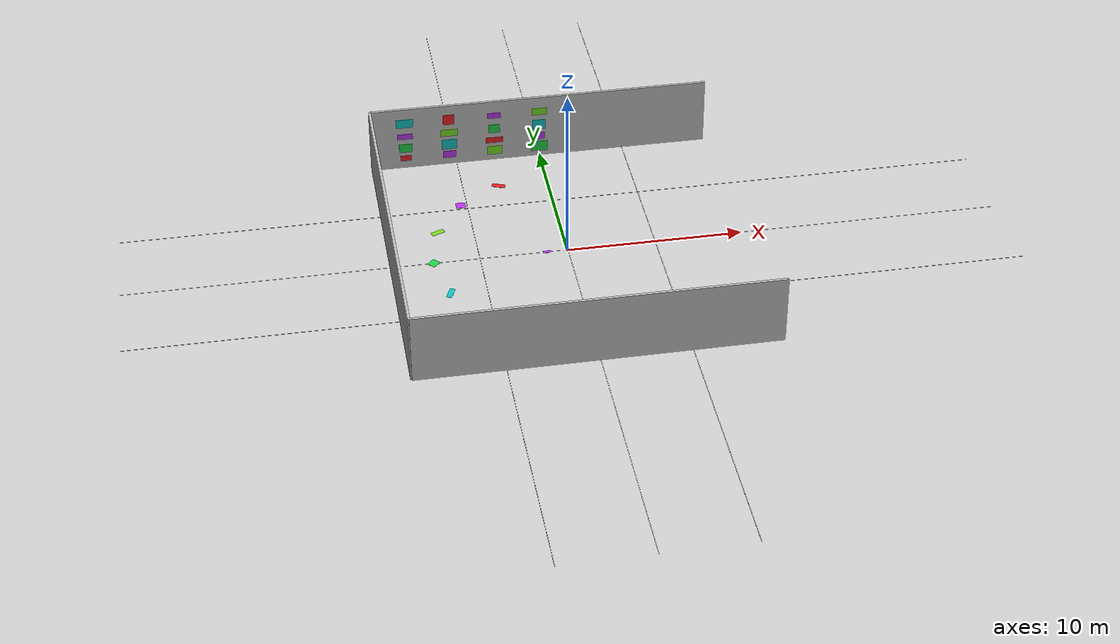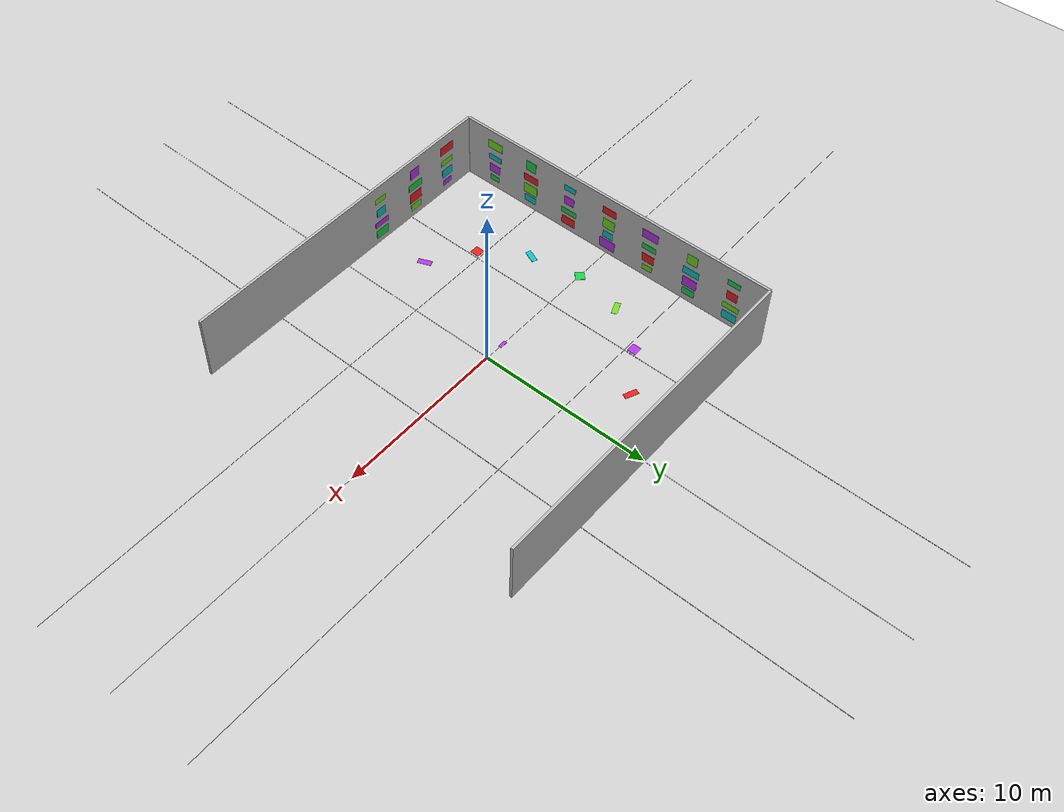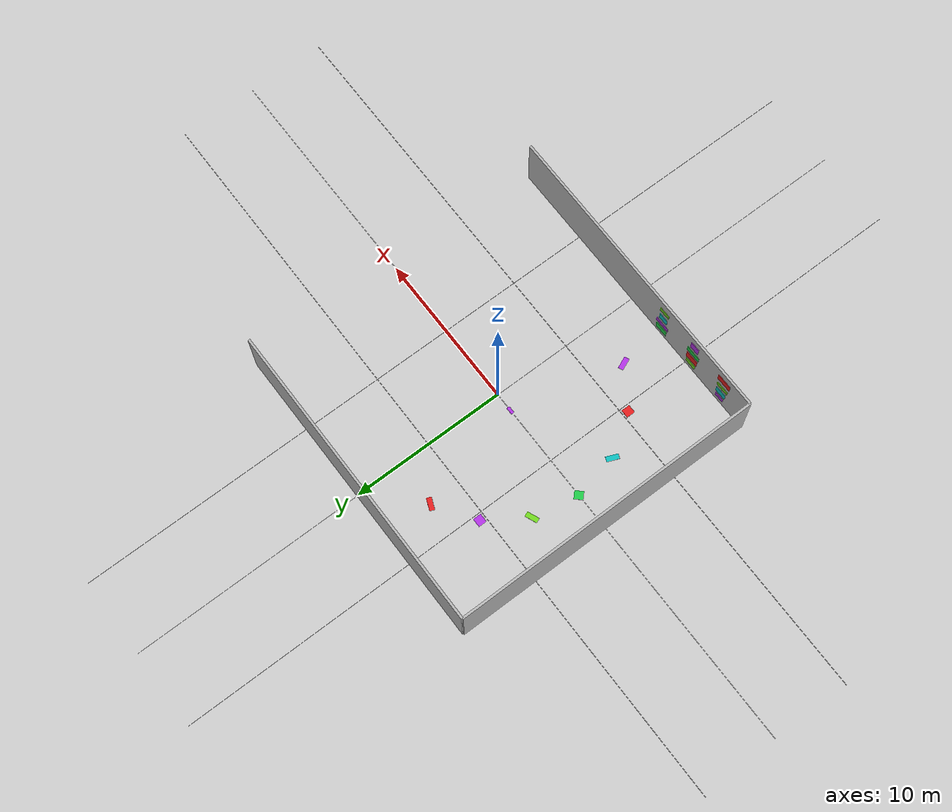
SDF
<sdf version="1.9">
 <world name="vio_marker_arena_half">
  <model name="ground_plane">
   <static>true</static>
   <link name="link">
    <collision name="collision">
     <geometry><plane><normal>0 0 1</normal><size>1 1</size></plane></geometry>
    </collision>
    <visual name="visual">
     <geometry><plane><normal>0 0 1</normal><size>500 500</size></plane></geometry>
     <material>
      <ambient>0.8 0.8 0.8 1</ambient>
      <diffuse>0.8 0.8 0.8 1</diffuse>
      <specular>0.8 0.8 0.8 1</specular>
     </material>
    </visual>
    <inertial>
     <mass>1</mass>
     <inertia><ixx>1</ixx><ixy>0</ixy><ixz>0</ixz><iyy>1</iyy><iyz>0</iyz><izz>1</izz></inertia>
    </inertial>
   </link>
  </model>
  <model name="visual_grid">
   <static>true</static>
   <pose>0 0 0.01 0 0 0</pose>
   <link name="grid_link">
    <visual name="x_line_1">
     <geometry><box><size>50 0.02 0.01</size></box></geometry>
     <material><ambient>0.7 0.7 0.7 1</ambient><diffuse>0.7 0.7 0.7 1</diffuse></material>
    </visual>
    <visual name="y_line_1">
     <pose>0 0 0 0 0 1.5708</pose>
     <geometry><box><size>50 0.02 0.01</size></box></geometry>
     <material><ambient>0.7 0.7 0.7 1</ambient><diffuse>0.7 0.7 0.7 1</diffuse></material>
    </visual>
    <visual name="x_line_5">
     <pose>0 5 0 0 0 0</pose>
     <geometry><box><size>50 0.02 0.01</size></box></geometry>
     <material><ambient>0.5 0.5 0.5 1</ambient><diffuse>0.5 0.5 0.5 1</diffuse></material>
    </visual>
    <visual name="x_line_minus5">
     <pose>0 -5 0 0 0 0</pose>
     <geometry><box><size>50 0.02 0.01</size></box></geometry>
     <material><ambient>0.5 0.5 0.5 1</ambient><diffuse>0.5 0.5 0.5 1</diffuse></material>
    </visual>
    <visual name="y_line_5">
     <pose>5 0 0 0 0 1.5708</pose>
     <geometry><box><size>50 0.02 0.01</size></box></geometry>
     <material><ambient>0.5 0.5 0.5 1</ambient><diffuse>0.5 0.5 0.5 1</diffuse></material>
    </visual>
    <visual name="y_line_minus5">
     <pose>-5 0 0 0 0 1.5708</pose>
     <geometry><box><size>50 0.02 0.01</size></box></geometry>
     <material><ambient>0.5 0.5 0.5 1</ambient><diffuse>0.5 0.5 0.5 1</diffuse></material>
    </visual>
   </link>
  </model>
  <model name="vio_wall_north">
   <static>true</static>
   <pose>0.0000 10.0000 2.0000 0.0000 0.0000 0.0000</pose>
   <link name="link">
    <collision name="collision"><geometry><box><size>20.0000 0.1500 4.0000</size></box></geometry></collision>
    <visual name="visual">
     <geometry><box><size>20.0000 0.1500 4.0000</size></box></geometry>
     <material>
      <ambient>0.720 0.720 0.720 1.000</ambient>
      <diffuse>0.720 0.720 0.720 1.000</diffuse>
      <specular>0.10 0.10 0.10 1</specular>
      <emissive>0 0 0 1</emissive>
     </material>
    </visual>
   </link>
  </model>
  <model name="vio_wall_south">
   <static>true</static>
   <pose>0.0000 -10.0000 2.0000 0.0000 0.0000 0.0000</pose>
   <link name="link">
    <collision name="collision"><geometry><box><size>20.0000 0.1500 4.0000</size></box></geometry></collision>
    <visual name="visual">
     <geometry><box><size>20.0000 0.1500 4.0000</size></box></geometry>
     <material>
      <ambient>0.720 0.720 0.720 1.000</ambient>
      <diffuse>0.720 0.720 0.720 1.000</diffuse>
      <specular>0.10 0.10 0.10 1</specular>
      <emissive>0 0 0 1</emissive>
     </material>
    </visual>
   </link>
  </model>
  <model name="vio_wall_west">
   <static>true</static>
   <pose>-10.0000 0.0000 2.0000 0.0000 0.0000 0.0000</pose>
   <link name="link">
    <collision name="collision"><geometry><box><size>0.1500 20.0000 4.0000</size></box></geometry></collision>
    <visual name="visual">
     <geometry><box><size>0.1500 20.0000 4.0000</size></box></geometry>
     <material>
      <ambient>0.720 0.720 0.720 1.000</ambient>
      <diffuse>0.720 0.720 0.720 1.000</diffuse>
      <specular>0.10 0.10 0.10 1</specular>
      <emissive>0 0 0 1</emissive>
     </material>
    </visual>
   </link>
  </model>
  <model name="vio_panel_north_0_0">
   <static>true</static>
   <pose>-8.0000 9.9190 0.6500 0.0000 0.0000 0.0000</pose>
   <link name="link">
    <visual name="visual">
     <geometry><box><size>0.6500 0.0350 0.3500</size></box></geometry>
     <material>
      <ambient>0.900 0.120 0.120 1.000</ambient>
      <diffuse>0.900 0.120 0.120 1.000</diffuse>
      <specular>0.10 0.10 0.10 1</specular>
      <emissive>0 0 0 1</emissive>
     </material>
    </visual>
   </link>
  </model>
  <model name="vio_panel_north_0_1">
   <static>true</static>
   <pose>-5.4000 9.9190 0.6500 0.0000 0.0000 0.0000</pose>
   <link name="link">
    <visual name="visual">
     <geometry><box><size>0.7700 0.0350 0.4500</size></box></geometry>
     <material>
      <ambient>0.700 0.200 0.900 1.000</ambient>
      <diffuse>0.700 0.200 0.900 1.000</diffuse>
      <specular>0.10 0.10 0.10 1</specular>
      <emissive>0 0 0 1</emissive>
     </material>
    </visual>
   </link>
  </model>
  <model name="vio_panel_north_0_2">
   <static>true</static>
   <pose>-2.7000 9.9190 0.6500 0.0000 0.0000 0.0000</pose>
   <link name="link">
    <visual name="visual">
     <geometry><box><size>0.8900 0.0350 0.5500</size></box></geometry>
     <material>
      <ambient>0.450 0.850 0.120 1.000</ambient>
      <diffuse>0.450 0.850 0.120 1.000</diffuse>
      <specular>0.10 0.10 0.10 1</specular>
      <emissive>0 0 0 1</emissive>
     </material>
    </visual>
   </link>
  </model>
  <model name="vio_panel_north_0_3">
   <static>true</static>
   <pose>0.0000 9.9190 0.6500 0.0000 0.0000 0.0000</pose>
   <link name="link">
    <visual name="visual">
     <geometry><box><size>1.0100 0.0350 0.6500</size></box></geometry>
     <material>
      <ambient>0.120 0.800 0.280 1.000</ambient>
      <diffuse>0.120 0.800 0.280 1.000</diffuse>
      <specular>0.10 0.10 0.10 1</specular>
      <emissive>0 0 0 1</emissive>
     </material>
    </visual>
   </link>
  </model>
  <model name="vio_panel_north_1_0">
   <static>true</static>
   <pose>-8.0000 9.9190 1.3500 0.0000 0.0000 0.0000</pose>
   <link name="link">
    <visual name="visual">
     <geometry><box><size>0.7700 0.0350 0.5500</size></box></geometry>
     <material>
      <ambient>0.120 0.800 0.280 1.000</ambient>
      <diffuse>0.120 0.800 0.280 1.000</diffuse>
      <specular>0.10 0.10 0.10 1</specular>
      <emissive>0 0 0 1</emissive>
     </material>
    </visual>
   </link>
  </model>
  <model name="vio_panel_north_1_1">
   <static>true</static>
   <pose>-5.4000 9.9190 1.3500 0.0000 0.0000 0.0000</pose>
   <link name="link">
    <visual name="visual">
     <geometry><box><size>0.8900 0.0350 0.6500</size></box></geometry>
     <material>
      <ambient>0.050 0.750 0.750 1.000</ambient>
      <diffuse>0.050 0.750 0.750 1.000</diffuse>
      <specular>0.10 0.10 0.10 1</specular>
      <emissive>0 0 0 1</emissive>
     </material>
    </visual>
   </link>
  </model>
  <model name="vio_panel_north_1_2">
   <static>true</static>
   <pose>-2.7000 9.9190 1.3500 0.0000 0.0000 0.0000</pose>
   <link name="link">
    <visual name="visual">
     <geometry><box><size>1.0100 0.0350 0.3500</size></box></geometry>
     <material>
      <ambient>0.900 0.120 0.120 1.000</ambient>
      <diffuse>0.900 0.120 0.120 1.000</diffuse>
      <specular>0.10 0.10 0.10 1</specular>
      <emissive>0 0 0 1</emissive>
     </material>
    </visual>
   </link>
  </model>
  <model name="vio_panel_north_1_3">
   <static>true</static>
   <pose>0.0000 9.9190 1.3500 0.0000 0.0000 0.0000</pose>
   <link name="link">
    <visual name="visual">
     <geometry><box><size>0.6500 0.0350 0.4500</size></box></geometry>
     <material>
      <ambient>0.700 0.200 0.900 1.000</ambient>
      <diffuse>0.700 0.200 0.900 1.000</diffuse>
      <specular>0.10 0.10 0.10 1</specular>
      <emissive>0 0 0 1</emissive>
     </material>
    </visual>
   </link>
  </model>
  <model name="vio_panel_north_2_0">
   <static>true</static>
   <pose>-8.0000 9.9190 2.1500 0.0000 0.0000 0.0000</pose>
   <link name="link">
    <visual name="visual">
     <geometry><box><size>0.8900 0.0350 0.3500</size></box></geometry>
     <material>
      <ambient>0.700 0.200 0.900 1.000</ambient>
      <diffuse>0.700 0.200 0.900 1.000</diffuse>
      <specular>0.10 0.10 0.10 1</specular>
      <emissive>0 0 0 1</emissive>
     </material>
    </visual>
   </link>
  </model>
  <model name="vio_panel_north_2_1">
   <static>true</static>
   <pose>-5.4000 9.9190 2.1500 0.0000 0.0000 0.0000</pose>
   <link name="link">
    <visual name="visual">
     <geometry><box><size>1.0100 0.0350 0.4500</size></box></geometry>
     <material>
      <ambient>0.450 0.850 0.120 1.000</ambient>
      <diffuse>0.450 0.850 0.120 1.000</diffuse>
      <specular>0.10 0.10 0.10 1</specular>
      <emissive>0 0 0 1</emissive>
     </material>
    </visual>
   </link>
  </model>
  <model name="vio_panel_north_2_2">
   <static>true</static>
   <pose>-2.7000 9.9190 2.1500 0.0000 0.0000 0.0000</pose>
   <link name="link">
    <visual name="visual">
     <geometry><box><size>0.6500 0.0350 0.5500</size></box></geometry>
     <material>
      <ambient>0.120 0.800 0.280 1.000</ambient>
      <diffuse>0.120 0.800 0.280 1.000</diffuse>
      <specular>0.10 0.10 0.10 1</specular>
      <emissive>0 0 0 1</emissive>
     </material>
    </visual>
   </link>
  </model>
  <model name="vio_panel_north_2_3">
   <static>true</static>
   <pose>0.0000 9.9190 2.1500 0.0000 0.0000 0.0000</pose>
   <link name="link">
    <visual name="visual">
     <geometry><box><size>0.7700 0.0350 0.6500</size></box></geometry>
     <material>
      <ambient>0.050 0.750 0.750 1.000</ambient>
      <diffuse>0.050 0.750 0.750 1.000</diffuse>
      <specular>0.10 0.10 0.10 1</specular>
      <emissive>0 0 0 1</emissive>
     </material>
    </visual>
   </link>
  </model>
  <model name="vio_panel_north_3_0">
   <static>true</static>
   <pose>-8.0000 9.9190 3.0500 0.0000 0.0000 0.0000</pose>
   <link name="link">
    <visual name="visual">
     <geometry><box><size>1.0100 0.0350 0.5500</size></box></geometry>
     <material>
      <ambient>0.050 0.750 0.750 1.000</ambient>
      <diffuse>0.050 0.750 0.750 1.000</diffuse>
      <specular>0.10 0.10 0.10 1</specular>
      <emissive>0 0 0 1</emissive>
     </material>
    </visual>
   </link>
  </model>
  <model name="vio_panel_north_3_1">
   <static>true</static>
   <pose>-5.4000 9.9190 3.0500 0.0000 0.0000 0.0000</pose>
   <link name="link">
    <visual name="visual">
     <geometry><box><size>0.6500 0.0350 0.6500</size></box></geometry>
     <material>
      <ambient>0.900 0.120 0.120 1.000</ambient>
      <diffuse>0.900 0.120 0.120 1.000</diffuse>
      <specular>0.10 0.10 0.10 1</specular>
      <emissive>0 0 0 1</emissive>
     </material>
    </visual>
   </link>
  </model>
  <model name="vio_panel_north_3_2">
   <static>true</static>
   <pose>-2.7000 9.9190 3.0500 0.0000 0.0000 0.0000</pose>
   <link name="link">
    <visual name="visual">
     <geometry><box><size>0.7700 0.0350 0.3500</size></box></geometry>
     <material>
      <ambient>0.700 0.200 0.900 1.000</ambient>
      <diffuse>0.700 0.200 0.900 1.000</diffuse>
      <specular>0.10 0.10 0.10 1</specular>
      <emissive>0 0 0 1</emissive>
     </material>
    </visual>
   </link>
  </model>
  <model name="vio_panel_north_3_3">
   <static>true</static>
   <pose>0.0000 9.9190 3.0500 0.0000 0.0000 0.0000</pose>
   <link name="link">
    <visual name="visual">
     <geometry><box><size>0.8900 0.0350 0.4500</size></box></geometry>
     <material>
      <ambient>0.450 0.850 0.120 1.000</ambient>
      <diffuse>0.450 0.850 0.120 1.000</diffuse>
      <specular>0.10 0.10 0.10 1</specular>
      <emissive>0 0 0 1</emissive>
     </material>
    </visual>
   </link>
  </model>
  <model name="vio_panel_south_0_0">
   <static>true</static>
   <pose>-8.0000 -9.9190 0.6500 0.0000 0.0000 0.0000</pose>
   <link name="link">
    <visual name="visual">
     <geometry><box><size>0.6500 0.0350 0.3500</size></box></geometry>
     <material>
      <ambient>0.700 0.200 0.900 1.000</ambient>
      <diffuse>0.700 0.200 0.900 1.000</diffuse>
      <specular>0.10 0.10 0.10 1</specular>
      <emissive>0 0 0 1</emissive>
     </material>
    </visual>
   </link>
  </model>
  <model name="vio_panel_south_0_1">
   <static>true</static>
   <pose>-5.4000 -9.9190 0.6500 0.0000 0.0000 0.0000</pose>
   <link name="link">
    <visual name="visual">
     <geometry><box><size>0.7700 0.0350 0.4500</size></box></geometry>
     <material>
      <ambient>0.450 0.850 0.120 1.000</ambient>
      <diffuse>0.450 0.850 0.120 1.000</diffuse>
      <specular>0.10 0.10 0.10 1</specular>
      <emissive>0 0 0 1</emissive>
     </material>
    </visual>
   </link>
  </model>
  <model name="vio_panel_south_0_2">
   <static>true</static>
   <pose>-2.7000 -9.9190 0.6500 0.0000 0.0000 0.0000</pose>
   <link name="link">
    <visual name="visual">
     <geometry><box><size>0.8900 0.0350 0.5500</size></box></geometry>
     <material>
      <ambient>0.120 0.800 0.280 1.000</ambient>
      <diffuse>0.120 0.800 0.280 1.000</diffuse>
      <specular>0.10 0.10 0.10 1</specular>
      <emissive>0 0 0 1</emissive>
     </material>
    </visual>
   </link>
  </model>
  <model name="vio_panel_south_1_0">
   <static>true</static>
   <pose>-8.0000 -9.9190 1.3500 0.0000 0.0000 0.0000</pose>
   <link name="link">
    <visual name="visual">
     <geometry><box><size>0.7700 0.0350 0.5500</size></box></geometry>
     <material>
      <ambient>0.050 0.750 0.750 1.000</ambient>
      <diffuse>0.050 0.750 0.750 1.000</diffuse>
      <specular>0.10 0.10 0.10 1</specular>
      <emissive>0 0 0 1</emissive>
     </material>
    </visual>
   </link>
  </model>
  <model name="vio_panel_south_1_1">
   <static>true</static>
   <pose>-5.4000 -9.9190 1.3500 0.0000 0.0000 0.0000</pose>
   <link name="link">
    <visual name="visual">
     <geometry><box><size>0.8900 0.0350 0.6500</size></box></geometry>
     <material>
      <ambient>0.900 0.120 0.120 1.000</ambient>
      <diffuse>0.900 0.120 0.120 1.000</diffuse>
      <specular>0.10 0.10 0.10 1</specular>
      <emissive>0 0 0 1</emissive>
     </material>
    </visual>
   </link>
  </model>
  <model name="vio_panel_south_1_2">
   <static>true</static>
   <pose>-2.7000 -9.9190 1.3500 0.0000 0.0000 0.0000</pose>
   <link name="link">
    <visual name="visual">
     <geometry><box><size>1.0100 0.0350 0.3500</size></box></geometry>
     <material>
      <ambient>0.700 0.200 0.900 1.000</ambient>
      <diffuse>0.700 0.200 0.900 1.000</diffuse>
      <specular>0.10 0.10 0.10 1</specular>
      <emissive>0 0 0 1</emissive>
     </material>
    </visual>
   </link>
  </model>
  <model name="vio_panel_south_2_0">
   <static>true</static>
   <pose>-8.0000 -9.9190 2.1500 0.0000 0.0000 0.0000</pose>
   <link name="link">
    <visual name="visual">
     <geometry><box><size>0.8900 0.0350 0.3500</size></box></geometry>
     <material>
      <ambient>0.450 0.850 0.120 1.000</ambient>
      <diffuse>0.450 0.850 0.120 1.000</diffuse>
      <specular>0.10 0.10 0.10 1</specular>
      <emissive>0 0 0 1</emissive>
     </material>
    </visual>
   </link>
  </model>
  <model name="vio_panel_south_2_1">
   <static>true</static>
   <pose>-5.4000 -9.9190 2.1500 0.0000 0.0000 0.0000</pose>
   <link name="link">
    <visual name="visual">
     <geometry><box><size>1.0100 0.0350 0.4500</size></box></geometry>
     <material>
      <ambient>0.120 0.800 0.280 1.000</ambient>
      <diffuse>0.120 0.800 0.280 1.000</diffuse>
      <specular>0.10 0.10 0.10 1</specular>
      <emissive>0 0 0 1</emissive>
     </material>
    </visual>
   </link>
  </model>
  <model name="vio_panel_south_2_2">
   <static>true</static>
   <pose>-2.7000 -9.9190 2.1500 0.0000 0.0000 0.0000</pose>
   <link name="link">
    <visual name="visual">
     <geometry><box><size>0.6500 0.0350 0.5500</size></box></geometry>
     <material>
      <ambient>0.050 0.750 0.750 1.000</ambient>
      <diffuse>0.050 0.750 0.750 1.000</diffuse>
      <specular>0.10 0.10 0.10 1</specular>
      <emissive>0 0 0 1</emissive>
     </material>
    </visual>
   </link>
  </model>
  <model name="vio_panel_south_3_0">
   <static>true</static>
   <pose>-8.0000 -9.9190 3.0500 0.0000 0.0000 0.0000</pose>
   <link name="link">
    <visual name="visual">
     <geometry><box><size>1.0100 0.0350 0.5500</size></box></geometry>
     <material>
      <ambient>0.900 0.120 0.120 1.000</ambient>
      <diffuse>0.900 0.120 0.120 1.000</diffuse>
      <specular>0.10 0.10 0.10 1</specular>
      <emissive>0 0 0 1</emissive>
     </material>
    </visual>
   </link>
  </model>
  <model name="vio_panel_south_3_1">
   <static>true</static>
   <pose>-5.4000 -9.9190 3.0500 0.0000 0.0000 0.0000</pose>
   <link name="link">
    <visual name="visual">
     <geometry><box><size>0.6500 0.0350 0.6500</size></box></geometry>
     <material>
      <ambient>0.700 0.200 0.900 1.000</ambient>
      <diffuse>0.700 0.200 0.900 1.000</diffuse>
      <specular>0.10 0.10 0.10 1</specular>
      <emissive>0 0 0 1</emissive>
     </material>
    </visual>
   </link>
  </model>
  <model name="vio_panel_south_3_2">
   <static>true</static>
   <pose>-2.7000 -9.9190 3.0500 0.0000 0.0000 0.0000</pose>
   <link name="link">
    <visual name="visual">
     <geometry><box><size>0.7700 0.0350 0.3500</size></box></geometry>
     <material>
      <ambient>0.450 0.850 0.120 1.000</ambient>
      <diffuse>0.450 0.850 0.120 1.000</diffuse>
      <specular>0.10 0.10 0.10 1</specular>
      <emissive>0 0 0 1</emissive>
     </material>
    </visual>
   </link>
  </model>
  <model name="vio_panel_west_0_0">
   <static>true</static>
   <pose>-9.9190 -8.0000 0.6500 0.0000 0.0000 0.0000</pose>
   <link name="link">
    <visual name="visual">
     <geometry><box><size>0.0350 0.6500 0.3500</size></box></geometry>
     <material>
      <ambient>0.120 0.800 0.280 1.000</ambient>
      <diffuse>0.120 0.800 0.280 1.000</diffuse>
      <specular>0.10 0.10 0.10 1</specular>
      <emissive>0 0 0 1</emissive>
     </material>
    </visual>
   </link>
  </model>
  <model name="vio_panel_west_0_1">
   <static>true</static>
   <pose>-9.9190 -5.4000 0.6500 0.0000 0.0000 0.0000</pose>
   <link name="link">
    <visual name="visual">
     <geometry><box><size>0.0350 0.7700 0.4500</size></box></geometry>
     <material>
      <ambient>0.050 0.750 0.750 1.000</ambient>
      <diffuse>0.050 0.750 0.750 1.000</diffuse>
      <specular>0.10 0.10 0.10 1</specular>
      <emissive>0 0 0 1</emissive>
     </material>
    </visual>
   </link>
  </model>
  <model name="vio_panel_west_0_2">
   <static>true</static>
   <pose>-9.9190 -2.7000 0.6500 0.0000 0.0000 0.0000</pose>
   <link name="link">
    <visual name="visual">
     <geometry><box><size>0.0350 0.8900 0.5500</size></box></geometry>
     <material>
      <ambient>0.900 0.120 0.120 1.000</ambient>
      <diffuse>0.900 0.120 0.120 1.000</diffuse>
      <specular>0.10 0.10 0.10 1</specular>
      <emissive>0 0 0 1</emissive>
     </material>
    </visual>
   </link>
  </model>
  <model name="vio_panel_west_0_3">
   <static>true</static>
   <pose>-9.9190 0.0000 0.6500 0.0000 0.0000 0.0000</pose>
   <link name="link">
    <visual name="visual">
     <geometry><box><size>0.0350 1.0100 0.6500</size></box></geometry>
     <material>
      <ambient>0.700 0.200 0.900 1.000</ambient>
      <diffuse>0.700 0.200 0.900 1.000</diffuse>
      <specular>0.10 0.10 0.10 1</specular>
      <emissive>0 0 0 1</emissive>
     </material>
    </visual>
   </link>
  </model>
  <model name="vio_panel_west_0_4">
   <static>true</static>
   <pose>-9.9190 2.7000 0.6500 0.0000 0.0000 0.0000</pose>
   <link name="link">
    <visual name="visual">
     <geometry><box><size>0.0350 0.6500 0.3500</size></box></geometry>
     <material>
      <ambient>0.450 0.850 0.120 1.000</ambient>
      <diffuse>0.450 0.850 0.120 1.000</diffuse>
      <specular>0.10 0.10 0.10 1</specular>
      <emissive>0 0 0 1</emissive>
     </material>
    </visual>
   </link>
  </model>
  <model name="vio_panel_west_0_5">
   <static>true</static>
   <pose>-9.9190 5.4000 0.6500 0.0000 0.0000 0.0000</pose>
   <link name="link">
    <visual name="visual">
     <geometry><box><size>0.0350 0.7700 0.4500</size></box></geometry>
     <material>
      <ambient>0.120 0.800 0.280 1.000</ambient>
      <diffuse>0.120 0.800 0.280 1.000</diffuse>
      <specular>0.10 0.10 0.10 1</specular>
      <emissive>0 0 0 1</emissive>
     </material>
    </visual>
   </link>
  </model>
  <model name="vio_panel_west_0_6">
   <static>true</static>
   <pose>-9.9190 8.0000 0.6500 0.0000 0.0000 0.0000</pose>
   <link name="link">
    <visual name="visual">
     <geometry><box><size>0.0350 0.8900 0.5500</size></box></geometry>
     <material>
      <ambient>0.050 0.750 0.750 1.000</ambient>
      <diffuse>0.050 0.750 0.750 1.000</diffuse>
      <specular>0.10 0.10 0.10 1</specular>
      <emissive>0 0 0 1</emissive>
     </material>
    </visual>
   </link>
  </model>
  <model name="vio_panel_west_1_0">
   <static>true</static>
   <pose>-9.9190 -8.0000 1.3500 0.0000 0.0000 0.0000</pose>
   <link name="link">
    <visual name="visual">
     <geometry><box><size>0.0350 0.7700 0.5500</size></box></geometry>
     <material>
      <ambient>0.700 0.200 0.900 1.000</ambient>
      <diffuse>0.700 0.200 0.900 1.000</diffuse>
      <specular>0.10 0.10 0.10 1</specular>
      <emissive>0 0 0 1</emissive>
     </material>
    </visual>
   </link>
  </model>
  <model name="vio_panel_west_1_1">
   <static>true</static>
   <pose>-9.9190 -5.4000 1.3500 0.0000 0.0000 0.0000</pose>
   <link name="link">
    <visual name="visual">
     <geometry><box><size>0.0350 0.8900 0.6500</size></box></geometry>
     <material>
      <ambient>0.450 0.850 0.120 1.000</ambient>
      <diffuse>0.450 0.850 0.120 1.000</diffuse>
      <specular>0.10 0.10 0.10 1</specular>
      <emissive>0 0 0 1</emissive>
     </material>
    </visual>
   </link>
  </model>
  <model name="vio_panel_west_1_2">
   <static>true</static>
   <pose>-9.9190 -2.7000 1.3500 0.0000 0.0000 0.0000</pose>
   <link name="link">
    <visual name="visual">
     <geometry><box><size>0.0350 1.0100 0.3500</size></box></geometry>
     <material>
      <ambient>0.120 0.800 0.280 1.000</ambient>
      <diffuse>0.120 0.800 0.280 1.000</diffuse>
      <specular>0.10 0.10 0.10 1</specular>
      <emissive>0 0 0 1</emissive>
     </material>
    </visual>
   </link>
  </model>
  <model name="vio_panel_west_1_3">
   <static>true</static>
   <pose>-9.9190 0.0000 1.3500 0.0000 0.0000 0.0000</pose>
   <link name="link">
    <visual name="visual">
     <geometry><box><size>0.0350 0.6500 0.4500</size></box></geometry>
     <material>
      <ambient>0.050 0.750 0.750 1.000</ambient>
      <diffuse>0.050 0.750 0.750 1.000</diffuse>
      <specular>0.10 0.10 0.10 1</specular>
      <emissive>0 0 0 1</emissive>
     </material>
    </visual>
   </link>
  </model>
  <model name="vio_panel_west_1_4">
   <static>true</static>
   <pose>-9.9190 2.7000 1.3500 0.0000 0.0000 0.0000</pose>
   <link name="link">
    <visual name="visual">
     <geometry><box><size>0.0350 0.7700 0.5500</size></box></geometry>
     <material>
      <ambient>0.900 0.120 0.120 1.000</ambient>
      <diffuse>0.900 0.120 0.120 1.000</diffuse>
      <specular>0.10 0.10 0.10 1</specular>
      <emissive>0 0 0 1</emissive>
     </material>
    </visual>
   </link>
  </model>
  <model name="vio_panel_west_1_5">
   <static>true</static>
   <pose>-9.9190 5.4000 1.3500 0.0000 0.0000 0.0000</pose>
   <link name="link">
    <visual name="visual">
     <geometry><box><size>0.0350 0.8900 0.6500</size></box></geometry>
     <material>
      <ambient>0.700 0.200 0.900 1.000</ambient>
      <diffuse>0.700 0.200 0.900 1.000</diffuse>
      <specular>0.10 0.10 0.10 1</specular>
      <emissive>0 0 0 1</emissive>
     </material>
    </visual>
   </link>
  </model>
  <model name="vio_panel_west_1_6">
   <static>true</static>
   <pose>-9.9190 8.0000 1.3500 0.0000 0.0000 0.0000</pose>
   <link name="link">
    <visual name="visual">
     <geometry><box><size>0.0350 1.0100 0.3500</size></box></geometry>
     <material>
      <ambient>0.450 0.850 0.120 1.000</ambient>
      <diffuse>0.450 0.850 0.120 1.000</diffuse>
      <specular>0.10 0.10 0.10 1</specular>
      <emissive>0 0 0 1</emissive>
     </material>
    </visual>
   </link>
  </model>
  <model name="vio_panel_west_2_0">
   <static>true</static>
   <pose>-9.9190 -8.0000 2.1500 0.0000 0.0000 0.0000</pose>
   <link name="link">
    <visual name="visual">
     <geometry><box><size>0.0350 0.8900 0.3500</size></box></geometry>
     <material>
      <ambient>0.050 0.750 0.750 1.000</ambient>
      <diffuse>0.050 0.750 0.750 1.000</diffuse>
      <specular>0.10 0.10 0.10 1</specular>
      <emissive>0 0 0 1</emissive>
     </material>
    </visual>
   </link>
  </model>
  <model name="vio_panel_west_2_1">
   <static>true</static>
   <pose>-9.9190 -5.4000 2.1500 0.0000 0.0000 0.0000</pose>
   <link name="link">
    <visual name="visual">
     <geometry><box><size>0.0350 1.0100 0.4500</size></box></geometry>
     <material>
      <ambient>0.900 0.120 0.120 1.000</ambient>
      <diffuse>0.900 0.120 0.120 1.000</diffuse>
      <specular>0.10 0.10 0.10 1</specular>
      <emissive>0 0 0 1</emissive>
     </material>
    </visual>
   </link>
  </model>
  <model name="vio_panel_west_2_2">
   <static>true</static>
   <pose>-9.9190 -2.7000 2.1500 0.0000 0.0000 0.0000</pose>
   <link name="link">
    <visual name="visual">
     <geometry><box><size>0.0350 0.6500 0.5500</size></box></geometry>
     <material>
      <ambient>0.700 0.200 0.900 1.000</ambient>
      <diffuse>0.700 0.200 0.900 1.000</diffuse>
      <specular>0.10 0.10 0.10 1</specular>
      <emissive>0 0 0 1</emissive>
     </material>
    </visual>
   </link>
  </model>
  <model name="vio_panel_west_2_3">
   <static>true</static>
   <pose>-9.9190 0.0000 2.1500 0.0000 0.0000 0.0000</pose>
   <link name="link">
    <visual name="visual">
     <geometry><box><size>0.0350 0.7700 0.6500</size></box></geometry>
     <material>
      <ambient>0.450 0.850 0.120 1.000</ambient>
      <diffuse>0.450 0.850 0.120 1.000</diffuse>
      <specular>0.10 0.10 0.10 1</specular>
      <emissive>0 0 0 1</emissive>
     </material>
    </visual>
   </link>
  </model>
  <model name="vio_panel_west_2_4">
   <static>true</static>
   <pose>-9.9190 2.7000 2.1500 0.0000 0.0000 0.0000</pose>
   <link name="link">
    <visual name="visual">
     <geometry><box><size>0.0350 0.8900 0.3500</size></box></geometry>
     <material>
      <ambient>0.120 0.800 0.280 1.000</ambient>
      <diffuse>0.120 0.800 0.280 1.000</diffuse>
      <specular>0.10 0.10 0.10 1</specular>
      <emissive>0 0 0 1</emissive>
     </material>
    </visual>
   </link>
  </model>
  <model name="vio_panel_west_2_5">
   <static>true</static>
   <pose>-9.9190 5.4000 2.1500 0.0000 0.0000 0.0000</pose>
   <link name="link">
    <visual name="visual">
     <geometry><box><size>0.0350 1.0100 0.4500</size></box></geometry>
     <material>
      <ambient>0.050 0.750 0.750 1.000</ambient>
      <diffuse>0.050 0.750 0.750 1.000</diffuse>
      <specular>0.10 0.10 0.10 1</specular>
      <emissive>0 0 0 1</emissive>
     </material>
    </visual>
   </link>
  </model>
  <model name="vio_panel_west_2_6">
   <static>true</static>
   <pose>-9.9190 8.0000 2.1500 0.0000 0.0000 0.0000</pose>
   <link name="link">
    <visual name="visual">
     <geometry><box><size>0.0350 0.6500 0.5500</size></box></geometry>
     <material>
      <ambient>0.900 0.120 0.120 1.000</ambient>
      <diffuse>0.900 0.120 0.120 1.000</diffuse>
      <specular>0.10 0.10 0.10 1</specular>
      <emissive>0 0 0 1</emissive>
     </material>
    </visual>
   </link>
  </model>
  <model name="vio_panel_west_3_0">
   <static>true</static>
   <pose>-9.9190 -8.0000 3.0500 0.0000 0.0000 0.0000</pose>
   <link name="link">
    <visual name="visual">
     <geometry><box><size>0.0350 1.0100 0.5500</size></box></geometry>
     <material>
      <ambient>0.450 0.850 0.120 1.000</ambient>
      <diffuse>0.450 0.850 0.120 1.000</diffuse>
      <specular>0.10 0.10 0.10 1</specular>
      <emissive>0 0 0 1</emissive>
     </material>
    </visual>
   </link>
  </model>
  <model name="vio_panel_west_3_1">
   <static>true</static>
   <pose>-9.9190 -5.4000 3.0500 0.0000 0.0000 0.0000</pose>
   <link name="link">
    <visual name="visual">
     <geometry><box><size>0.0350 0.6500 0.6500</size></box></geometry>
     <material>
      <ambient>0.120 0.800 0.280 1.000</ambient>
      <diffuse>0.120 0.800 0.280 1.000</diffuse>
      <specular>0.10 0.10 0.10 1</specular>
      <emissive>0 0 0 1</emissive>
     </material>
    </visual>
   </link>
  </model>
  <model name="vio_panel_west_3_2">
   <static>true</static>
   <pose>-9.9190 -2.7000 3.0500 0.0000 0.0000 0.0000</pose>
   <link name="link">
    <visual name="visual">
     <geometry><box><size>0.0350 0.7700 0.3500</size></box></geometry>
     <material>
      <ambient>0.050 0.750 0.750 1.000</ambient>
      <diffuse>0.050 0.750 0.750 1.000</diffuse>
      <specular>0.10 0.10 0.10 1</specular>
      <emissive>0 0 0 1</emissive>
     </material>
    </visual>
   </link>
  </model>
  <model name="vio_panel_west_3_3">
   <static>true</static>
   <pose>-9.9190 0.0000 3.0500 0.0000 0.0000 0.0000</pose>
   <link name="link">
    <visual name="visual">
     <geometry><box><size>0.0350 0.8900 0.4500</size></box></geometry>
     <material>
      <ambient>0.900 0.120 0.120 1.000</ambient>
      <diffuse>0.900 0.120 0.120 1.000</diffuse>
      <specular>0.10 0.10 0.10 1</specular>
      <emissive>0 0 0 1</emissive>
     </material>
    </visual>
   </link>
  </model>
  <model name="vio_panel_west_3_4">
   <static>true</static>
   <pose>-9.9190 2.7000 3.0500 0.0000 0.0000 0.0000</pose>
   <link name="link">
    <visual name="visual">
     <geometry><box><size>0.0350 1.0100 0.5500</size></box></geometry>
     <material>
      <ambient>0.700 0.200 0.900 1.000</ambient>
      <diffuse>0.700 0.200 0.900 1.000</diffuse>
      <specular>0.10 0.10 0.10 1</specular>
      <emissive>0 0 0 1</emissive>
     </material>
    </visual>
   </link>
  </model>
  <model name="vio_panel_west_3_5">
   <static>true</static>
   <pose>-9.9190 5.4000 3.0500 0.0000 0.0000 0.0000</pose>
   <link name="link">
    <visual name="visual">
     <geometry><box><size>0.0350 0.6500 0.6500</size></box></geometry>
     <material>
      <ambient>0.450 0.850 0.120 1.000</ambient>
      <diffuse>0.450 0.850 0.120 1.000</diffuse>
      <specular>0.10 0.10 0.10 1</specular>
      <emissive>0 0 0 1</emissive>
     </material>
    </visual>
   </link>
  </model>
  <model name="vio_panel_west_3_6">
   <static>true</static>
   <pose>-9.9190 8.0000 3.0500 0.0000 0.0000 0.0000</pose>
   <link name="link">
    <visual name="visual">
     <geometry><box><size>0.0350 0.7700 0.3500</size></box></geometry>
     <material>
      <ambient>0.120 0.800 0.280 1.000</ambient>
      <diffuse>0.120 0.800 0.280 1.000</diffuse>
      <specular>0.10 0.10 0.10 1</specular>
      <emissive>0 0 0 1</emissive>
     </material>
    </visual>
   </link>
  </model>
  <model name="vio_floor_marker_10">
   <static>true</static>
   <pose>-2.9084 7.0215 0.0120 0.0000 0.0000 2.7489</pose>
   <link name="link">
    <visual name="visual">
     <geometry><box><size>0.7900 0.3200 0.0180</size></box></geometry>
     <material>
      <ambient>0.900 0.120 0.120 1.000</ambient>
      <diffuse>0.900 0.120 0.120 1.000</diffuse>
      <specular>0.10 0.10 0.10 1</specular>
      <emissive>0 0 0 1</emissive>
     </material>
    </visual>
   </link>
  </model>
  <model name="vio_floor_marker_12">
   <static>true</static>
   <pose>-5.3740 5.3740 0.0120 0.0000 0.0000 3.1416</pose>
   <link name="link">
    <visual name="visual">
     <geometry><box><size>0.5500 0.5200 0.0180</size></box></geometry>
     <material>
      <ambient>0.700 0.200 0.900 1.000</ambient>
      <diffuse>0.700 0.200 0.900 1.000</diffuse>
      <specular>0.10 0.10 0.10 1</specular>
      <emissive>0 0 0 1</emissive>
     </material>
    </visual>
   </link>
  </model>
  <model name="vio_floor_marker_14">
   <static>true</static>
   <pose>-7.0215 2.9084 0.0120 0.0000 0.0000 3.5343</pose>
   <link name="link">
    <visual name="visual">
     <geometry><box><size>0.7900 0.3200 0.0180</size></box></geometry>
     <material>
      <ambient>0.450 0.850 0.120 1.000</ambient>
      <diffuse>0.450 0.850 0.120 1.000</diffuse>
      <specular>0.10 0.10 0.10 1</specular>
      <emissive>0 0 0 1</emissive>
     </material>
    </visual>
   </link>
  </model>
  <model name="vio_floor_marker_16">
   <static>true</static>
   <pose>-7.6000 0.0000 0.0120 0.0000 0.0000 3.9270</pose>
   <link name="link">
    <visual name="visual">
     <geometry><box><size>0.5500 0.5200 0.0180</size></box></geometry>
     <material>
      <ambient>0.120 0.800 0.280 1.000</ambient>
      <diffuse>0.120 0.800 0.280 1.000</diffuse>
      <specular>0.10 0.10 0.10 1</specular>
      <emissive>0 0 0 1</emissive>
     </material>
    </visual>
   </link>
  </model>
  <model name="vio_floor_marker_18">
   <static>true</static>
   <pose>-7.0215 -2.9084 0.0120 0.0000 0.0000 4.3197</pose>
   <link name="link">
    <visual name="visual">
     <geometry><box><size>0.7900 0.3200 0.0180</size></box></geometry>
     <material>
      <ambient>0.050 0.750 0.750 1.000</ambient>
      <diffuse>0.050 0.750 0.750 1.000</diffuse>
      <specular>0.10 0.10 0.10 1</specular>
      <emissive>0 0 0 1</emissive>
     </material>
    </visual>
   </link>
  </model>
  <model name="vio_floor_marker_20">
   <static>true</static>
   <pose>-5.3740 -5.3740 0.0120 0.0000 0.0000 4.7124</pose>
   <link name="link">
    <visual name="visual">
     <geometry><box><size>0.5500 0.5200 0.0180</size></box></geometry>
     <material>
      <ambient>0.900 0.120 0.120 1.000</ambient>
      <diffuse>0.900 0.120 0.120 1.000</diffuse>
      <specular>0.10 0.10 0.10 1</specular>
      <emissive>0 0 0 1</emissive>
     </material>
    </visual>
   </link>
  </model>
  <model name="vio_floor_marker_22">
   <static>true</static>
   <pose>-2.9084 -7.0215 0.0120 0.0000 0.0000 5.1051</pose>
   <link name="link">
    <visual name="visual">
     <geometry><box><size>0.7900 0.3200 0.0180</size></box></geometry>
     <material>
      <ambient>0.700 0.200 0.900 1.000</ambient>
      <diffuse>0.700 0.200 0.900 1.000</diffuse>
      <specular>0.10 0.10 0.10 1</specular>
      <emissive>0 0 0 1</emissive>
     </material>
    </visual>
   </link>
  </model>
  <model name="vio_center_marker_4">
   <static>true</static>
   <pose>-1.2000 0.0000 0.0130 0.0000 0.0000 3.1416</pose>
   <link name="link">
    <visual name="visual">
     <geometry><box><size>0.4500 0.2000 0.0200</size></box></geometry>
     <material>
      <ambient>0.700 0.200 0.900 1.000</ambient>
      <diffuse>0.700 0.200 0.900 1.000</diffuse>
      <specular>0.10 0.10 0.10 1</specular>
      <emissive>0 0 0 1</emissive>
     </material>
    </visual>
   </link>
  </model>
 </world>
</sdf>
